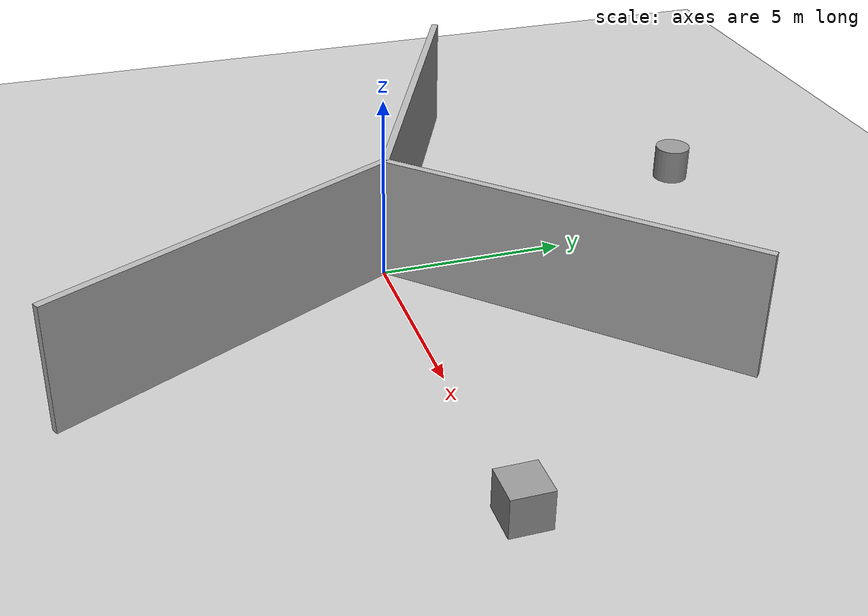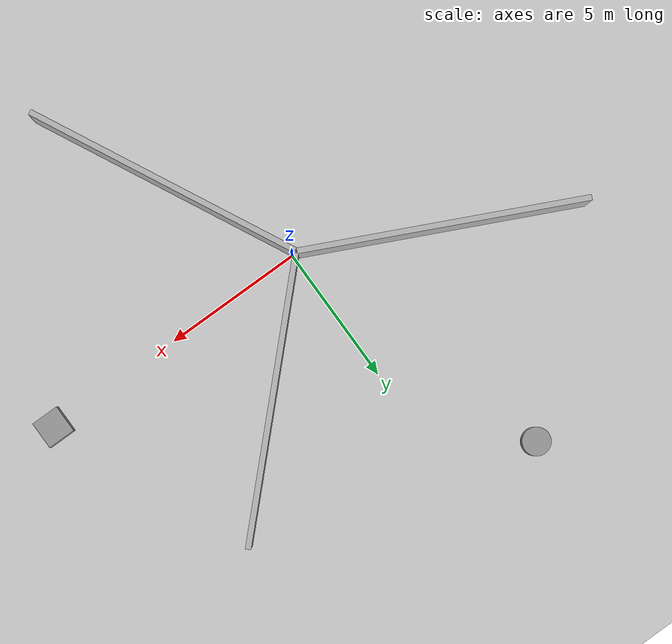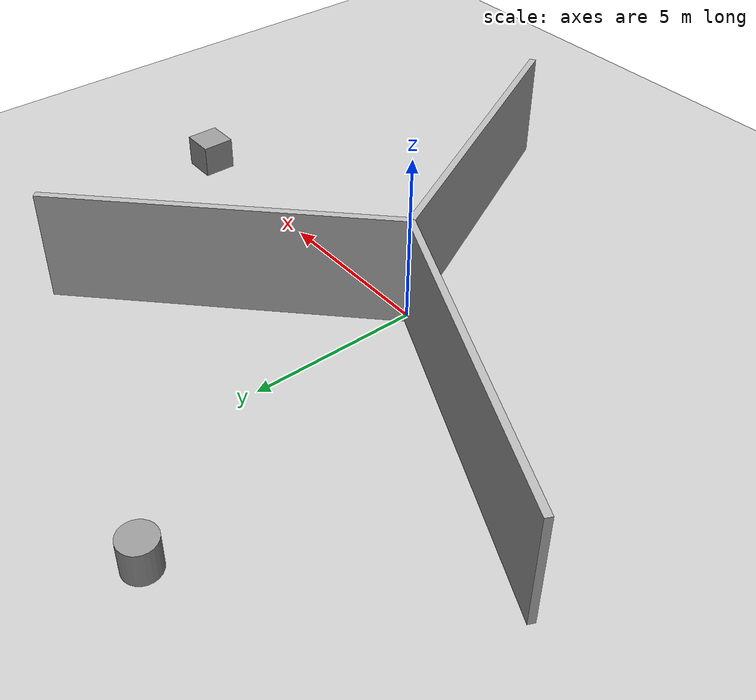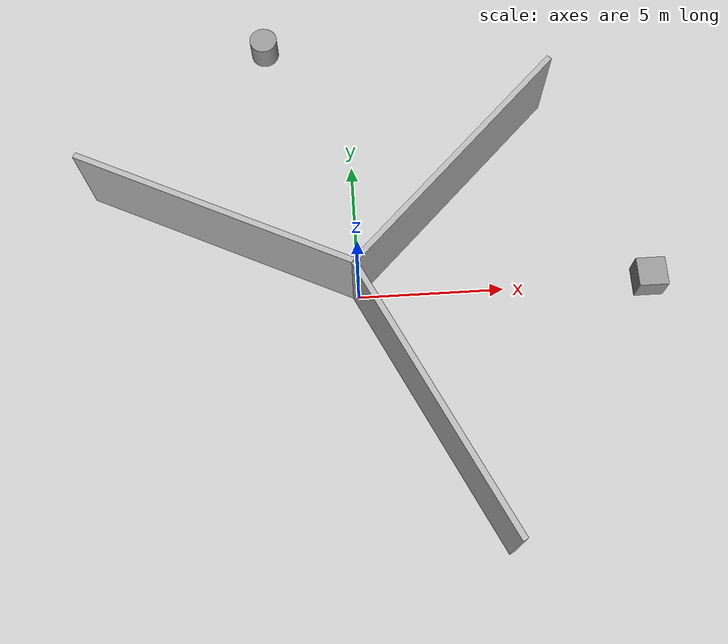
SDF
<sdf version="1.7">
 <world name="default">
  <model name="ground_plane">
   <static>1</static>
   <link name="link">
    <collision name="collision">
     <geometry><plane><normal>0 0 1</normal><size>100 100</size></plane></geometry>
     <surface>
      <contact><collide_bitmask>65535</collide_bitmask></contact>
      <friction><ode><mu>100</mu><mu2>50</mu2></ode></friction>
     </surface>
    </collision>
    <visual name="visual">
     <cast_shadows>0</cast_shadows>
     <geometry><plane><normal>0 0 1</normal><size>100 100</size></plane></geometry>
     <material>
      <script><uri>file://media/materials/scripts/gazebo.material</uri><name>Gazebo/Grey</name></script>
     </material>
    </visual>
   </link>
  </model>
  <model name="cutout_wall">
   <static>1</static>
   <link name="link">
    <pose>0 0 1.4 0 -0 0</pose>
    <collision name="collision">
     <geometry><box><size>10 0.2 3.8</size></box></geometry>
     <surface>
      <contact>
       <collide_without_contact>1</collide_without_contact>
       <collide_without_contact_bitmask>2</collide_without_contact_bitmask>
      </contact>
     </surface>
    </collision>
    <visual name="visual">
     <cast_shadows>0</cast_shadows>
     <geometry><box><size>10 0.2 3.8</size></box></geometry>
     <material>
      <script>
       <uri>https://fuel.ignitionrobotics.org/1.0/openrobotics/models/cutout wall/1/files/materials/scripts</uri>
       <uri>https://fuel.ignitionrobotics.org/1.0/openrobotics/models/cutout wall/1/files/materials/textures</uri>
       <name>drc_practice/cutout_wall</name>
      </script>
     </material>
    </visual>
    <sensor name="mud_contact" type="contact">
     <always_on>1</always_on>
     <update_rate>1000</update_rate>
     <contact><collision>collision</collision><topic>__default_topic__</topic></contact>
    </sensor>
   </link>
   <plugin name="gazebo_mud" filename="libMudPlugin.so">
    <contact_sensor_name>link/mud_contact</contact_sensor_name>
    <stiffness>0.0</stiffness>
    <damping>40.0</damping>
    <contact_surface_bitmask>2</contact_surface_bitmask>
    <link_name>drill::link</link_name>
   </plugin>
   <pose>-4.65335 2.2458 0 0 0 -0.445977</pose>
  </model>
  <model name="cutout_wall_0">
   <static>1</static>
   <link name="link">
    <pose>0 0 1.4 0 -0 0</pose>
    <collision name="collision">
     <geometry><box><size>10 0.2 3.8</size></box></geometry>
     <surface>
      <contact>
       <collide_without_contact>1</collide_without_contact>
       <collide_without_contact_bitmask>2</collide_without_contact_bitmask>
      </contact>
     </surface>
    </collision>
    <visual name="visual">
     <cast_shadows>0</cast_shadows>
     <geometry><box><size>10 0.2 3.8</size></box></geometry>
     <material>
      <script>
       <uri>https://fuel.ignitionrobotics.org/1.0/openrobotics/models/cutout wall/1/files/materials/scripts</uri>
       <uri>https://fuel.ignitionrobotics.org/1.0/openrobotics/models/cutout wall/1/files/materials/textures</uri>
       <name>drc_practice/cutout_wall</name>
      </script>
     </material>
    </visual>
    <sensor name="mud_contact" type="contact">
     <always_on>1</always_on>
     <update_rate>1000</update_rate>
     <contact><collision>collision</collision><topic>__default_topic__</topic></contact>
    </sensor>
   </link>
   <plugin name="gazebo_mud" filename="libMudPlugin.so">
    <contact_sensor_name>link/mud_contact</contact_sensor_name>
    <stiffness>0.0</stiffness>
    <damping>40.0</damping>
    <contact_surface_bitmask>2</contact_surface_bitmask>
    <link_name>drill::link</link_name>
   </plugin>
   <pose>2.12438 -4.42855 0 0 0 -1.1067</pose>
  </model>
  <model name="cutout_wall_1">
   <static>1</static>
   <link name="link">
    <pose>0 0 1.4 0 -0 0</pose>
    <collision name="collision">
     <geometry><box><size>10 0.2 3.8</size></box></geometry>
     <surface>
      <contact>
       <collide_without_contact>1</collide_without_contact>
       <collide_without_contact_bitmask>2</collide_without_contact_bitmask>
      </contact>
     </surface>
    </collision>
    <visual name="visual">
     <cast_shadows>0</cast_shadows>
     <geometry><box><size>10 0.2 3.8</size></box></geometry>
     <material>
      <script>
       <uri>https://fuel.ignitionrobotics.org/1.0/openrobotics/models/cutout wall/1/files/materials/scripts</uri>
       <uri>https://fuel.ignitionrobotics.org/1.0/openrobotics/models/cutout wall/1/files/materials/textures</uri>
       <name>drc_practice/cutout_wall</name>
      </script>
     </material>
    </visual>
    <sensor name="mud_contact" type="contact">
     <always_on>1</always_on>
     <update_rate>1000</update_rate>
     <contact><collision>collision</collision><topic>__default_topic__</topic></contact>
    </sensor>
   </link>
   <plugin name="gazebo_mud" filename="libMudPlugin.so">
    <contact_sensor_name>link/mud_contact</contact_sensor_name>
    <stiffness>0.0</stiffness>
    <damping>40.0</damping>
    <contact_surface_bitmask>2</contact_surface_bitmask>
    <link_name>drill::link</link_name>
   </plugin>
   <pose>3.45174 3.64781 0 0 -0 0.785398</pose>
  </model>
  <model name="unit_box">
   <pose>10 -1e-06 0.5 0 -0 0</pose>
   <link name="link">
    <inertial>
     <mass>1</mass>
     <inertia>
      <ixx>0.166667</ixx>
      <ixy>0</ixy>
      <ixz>0</ixz>
      <iyy>0.166667</iyy>
      <iyz>0</iyz>
      <izz>0.166667</izz>
     </inertia>
    </inertial>
    <collision name="collision"><geometry><box><size>1 1 1</size></box></geometry></collision>
    <visual name="visual">
     <geometry><box><size>1 1 1</size></box></geometry>
     <material>
      <script><name>Gazebo/Grey</name><uri>file://media/materials/scripts/gazebo.material</uri></script>
     </material>
    </visual>
   </link>
  </model>
  <model name="unit_cylinder">
   <pose>-3 10 0.5 0 -0 0</pose>
   <link name="link">
    <inertial>
     <mass>1</mass>
     <inertia><ixx>0.145833</ixx><ixy>0</ixy><ixz>0</ixz><iyy>0.145833</iyy><iyz>0</iyz><izz>0.125</izz></inertia>
    </inertial>
    <collision name="collision">
     <geometry><cylinder><radius>0.5</radius><length>1</length></cylinder></geometry>
    </collision>
    <visual name="visual">
     <geometry><cylinder><radius>0.5</radius><length>1</length></cylinder></geometry>
     <material>
      <script><name>Gazebo/Grey</name><uri>file://media/materials/scripts/gazebo.material</uri></script>
     </material>
    </visual>
   </link>
  </model>
 </world>
</sdf>
